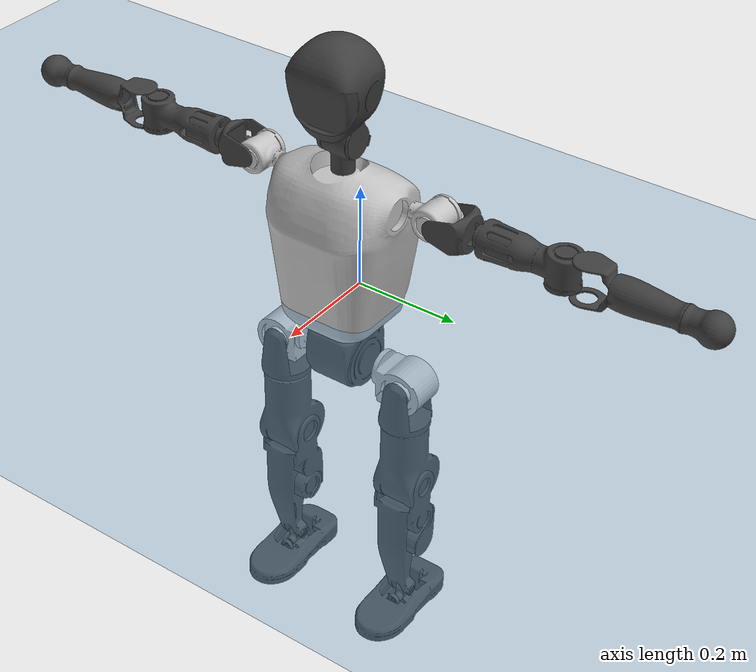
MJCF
<mujoco model="T1">
  <compiler angle="radian" assetdir="assets" balanceinertia="true" inertiafromgeom="false"/>

  <option timestep="0.005" density="1.2" viscosity="2e-05"/>

  <size nkey="1"/>

  <visual>
    <quality shadowsize="8192"/>
    <map shadowclip="0.5"/>
  </visual>

  <default>
    <default class="/">
      <joint armature="0.01" damping="0.01" frictionloss="0.1"/>
      <geom contype="0" conaffinity="0" group="1" solref="-1000 -80"/>
      <site size="0.01 0.005 0.005" group="5"/>
      <general forcelimited="true" biastype="affine" gainprm="25" biasprm="0 -25 -0.6"/>
      <default class="t1">
        <geom rgba="0.25 0.25 0.25 1"/>
        <default class="visual">
          <geom type="mesh" group="2"/>
        </default>
        <default class="collision">
          <geom group="3"/>
        </default>
        <default class="foot">
          <geom size="0.1115 0.05 0.015" type="box" condim="6" group="4" priority="1" solimp="0.015 1 0.015"/>
        </default>
        <default class="reward_collision_sphere">
          <geom group="5" rgba="1 0 0 1"/>
        </default>
      </default>
    </default>
  </default>

  <asset>
    <texture type="skybox" colorspace="auto" name="//unnamed_texture_0" builtin="gradient" rgb1="0.95 0.95 0.95" rgb2="0.95 0.95 0.95" width="100" height="600"/>
    <texture type="2d" colorspace="auto" name="texplane" builtin="checker" rgb1="0.345 0.575 0.748" rgb2="0.345 0.575 0.748" markrgb="1 1 1" width="512" height="512"/>
    <material name="MatPlane" class="/" texture="texplane" texuniform="true" texrepeat="2 2" specular="0.9"/>
    <mesh name="Trunk" class="/" file="Trunk.stl"/>
    <mesh name="H1" class="/" file="H1.stl"/>
    <mesh name="H2" class="/" file="H2.stl"/>
    <mesh name="AL1" class="/" file="AL1.stl"/>
    <mesh name="AL2" class="/" file="AL2.stl"/>
    <mesh name="AL3" class="/" file="AL3.stl"/>
    <mesh name="left_hand_link" class="/" file="left_hand_link.stl"/>
    <mesh name="AR1" class="/" file="AR1.stl"/>
    <mesh name="AR2" class="/" file="AR2.stl"/>
    <mesh name="AR3" class="/" file="AR3.stl"/>
    <mesh name="right_hand_link" class="/" file="right_hand_link.stl"/>
    <mesh name="Waist" class="/" file="Waist.stl"/>
    <mesh name="Hip_Pitch_Left" class="/" file="Hip_Pitch_Left.stl"/>
    <mesh name="Hip_Roll_Left" class="/" file="Hip_Roll_Left.stl"/>
    <mesh name="Hip_Yaw_Left" class="/" file="Hip_Yaw_Left.stl"/>
    <mesh name="Shank_Left" class="/" file="Shank_Left.stl"/>
    <mesh name="Ankle_Cross_Left" class="/" file="Ankle_Cross_Left.stl"/>
    <mesh name="left_foot_link" class="/" file="left_foot_link.stl"/>
    <mesh name="Hip_Pitch_Right" class="/" file="Hip_Pitch_Right.stl"/>
    <mesh name="Hip_Roll_Right" class="/" file="Hip_Roll_Right.stl"/>
    <mesh name="Hip_Yaw_Right" class="/" file="Hip_Yaw_Right.stl"/>
    <mesh name="Shank_Right" class="/" file="Shank_Right.stl"/>
    <mesh name="Ankle_Cross_Right" class="/" file="Ankle_Cross_Right.stl"/>
    <mesh name="right_foot_link" class="/" file="right_foot_link.stl"/>
  </asset>

  <worldbody>
    <geom name="floor" class="/" size="100 100 0.125" type="plane" group="0" material="MatPlane"/>
    <light name="toplight_shadow" class="/" pos="0 0 5" dir="0.0990148 0.0990148 -0.990148" type="directional" ambient="0.04 0.04 0.04" diffuse="0.55 0.55 0.55" specular="0.12 0.12 0.12"/>
    <light name="toplight_fill" class="/" pos="0 0 5" dir="0.0990148 0.0990148 -0.990148" type="directional" castshadow="false" ambient="0.04 0.04 0.04" diffuse="0.3 0.3 0.3" specular="0.08 0.08 0.08"/>
    <body name="trunk" childclass="t1" pos="0.000181197 -0.000865092 -0.000524978" quat="1 -4.92076e-05 -0.000159415 -6.07014e-05">
      <inertial pos="0.0421504 0.00187569 0.112465" quat="0.999881 -0.012361 -0.00813683 -0.0043255" mass="12.2656" diaginertia="0.0192082 0.264131 0.0681828"/>
      <joint name="//unnamed_joint_0" type="free" armature="0" damping="0" frictionloss="0"/>
      <geom name="//unnamed_geom_1" class="visual" rgba="0.76 0.76 0.76 1" mesh="Trunk"/>
      <geom name="//unnamed_geom_2" class="collision" size="0.0766931 0.102257 0.153386" pos="0.0441289 0 0.125496" type="box"/>
      <geom name="//unnamed_geom_3" class="reward_collision_sphere" size="0.117596" pos="0.0441289 0 0.10458"/>
      <geom name="//unnamed_geom_4" class="reward_collision_sphere" size="0.0153386" pos="0.0441289 0.109348 0"/>
      <geom name="//unnamed_geom_5" class="reward_collision_sphere" size="0.0153386" pos="0.0441289 -0.109348 0"/>
      <geom name="//unnamed_geom_6" class="reward_collision_sphere" size="0.0153386" pos="0.0441289 0.13765 0.188243"/>
      <geom name="//unnamed_geom_7" class="reward_collision_sphere" size="0.0153386" pos="0.0441289 -0.13765 0.188243"/>
      <site name="imu" pos="-0.0113611 -0.00874473 -0.00110953" size="0.0102257"/>
      <camera name="track" pos="0 -2.57289 0" quat="0.707107 0.707107 0 0" mode="trackcom"/>
      <camera name="ego_camera" pos="0.0897288 0 0.439235" quat="-0.5 -0.5 0.5 0.5"/>
      <body name="H1" pos="0.0441201 -0.00288702 0.256499" quat="1 6.62195e-06 3.43233e-05 8.23983e-07">
        <inertial pos="-0.00128922 5.26927e-05 0.0609406" quat="0.755474 -0.0172621 0.00101431 0.654951" mass="0.459981" diaginertia="5.08778e-05 0.000766937 0.000187155"/>
        <joint name="AAHead_yaw" pos="0 0 0" axis="0.00027539 -0.00551246 0.999985" range="-1.57615 1.51978" armature="0.0105711" damping="0.0252674" frictionloss="0.0935235"/>
        <geom name="//unnamed_geom_8" class="visual" mesh="H1"/>
        <body name="H2" pos="-0.00116288 -0.000980154 0.0615943" quat="1 1.75658e-05 1.22689e-05 -6.13581e-05">
          <inertial pos="0.00440643 -0.00102975 0.102689" quat="0.988783 0.111053 -0.0740924 -0.0669776" mass="0.671253" diaginertia="0.000438414 0.00676121 0.00222943"/>
          <joint name="Head_pitch" pos="0 0 0" axis="-0.00325531 -0.999995 0.000273171" stiffness="0.00140617" range="-1.21702 0.35358" armature="0.0100627" damping="0.0100702" frictionloss="0.0889384"/>
          <geom name="//unnamed_geom_9" class="visual" mesh="H2"/>
          <geom name="//unnamed_geom_10" class="collision" size="0.081806" pos="0.00735482 0 0.115038"/>
          <geom name="//unnamed_geom_11" class="reward_collision_sphere" size="0.0920317" pos="0.0147096 0 0.10458"/>
        </body>
      </body>
      <body name="AL1" pos="0.0406637 0.136622 0.227384" quat="0.999998 0.000182225 0.0017268 -0.000406789">
        <inertial pos="-0.00055684 0.0559724 -0.00163082" quat="0.499021 0.505857 -0.503604 0.491397" mass="0.567178" diaginertia="0.000297089 0.00470315 0.000363297"/>
        <joint name="Left_Shoulder_Pitch" pos="0 0 0" axis="-2.55706e-05 1 -0.000493217" stiffness="0.0031865" range="-3.31893 1.27606" armature="0.0101223" damping="0.00355833" frictionloss="0.101765"/>
        <geom name="//unnamed_geom_12" class="visual" rgba="0.76 0.76 0.76 1" mesh="AL1"/>
        <body name="AL2" pos="0.000202194 0.0637127 -0.00259142" quat="0.999999 -0.00112074 -0.000484731 0.000102002">
          <inertial pos="0.00538026 0.0508717 0.00205144" quat="0.487899 0.51525 -0.492192 0.504201" mass="0.1731" diaginertia="8.5941e-05 0.00120815 0.000226152"/>
          <joint name="Left_Shoulder_Roll" pos="0 0 0" axis="-1 -8.50395e-05 -0.0007936" range="-1.56979 1.73993" armature="0.0100338" damping="0.0062834" frictionloss="0.105883"/>
          <geom name="//unnamed_geom_13" class="visual" mesh="AL2"/>
          <body name="AL3" pos="0.000901248 0.0798647 0.00277155" quat="1 -9.0093e-05 6.00606e-06 5.20424e-05">
            <inertial pos="-0.0025241 0.10931 -0.00258907" quat="0.704322 0.709765 -0.00488143 -0.0118633" mass="1.1684" diaginertia="0.00286809 0.0461688 0.000804257"/>
            <joint name="Left_Elbow_Pitch" pos="0 0 0" axis="0.00101156 -0.999967 0.00807896" stiffness="0.00139589" range="-2.29238 2.31859" armature="0.0108438" damping="0.0234936" frictionloss="0.100123"/>
            <geom name="//unnamed_geom_14" class="visual" mesh="AL3"/>
            <geom name="//unnamed_geom_15" class="collision" size="0.0306772 0.0766931" pos="0 0.0643223 0" quat="0.707105 0.707108 0 0" type="cylinder"/>
            <geom name="//unnamed_geom_16" class="reward_collision_sphere" size="0.0368127"/>
            <body name="left_hand_link" pos="0.00185424 0.192053 -0.00187778" quat="1 7.13969e-06 -0.000502908 -2.15162e-05">
              <inertial pos="-0.000631253 0.142155 -0.000184694" quat="0.70805 0.706162 0.00015061 -4.56442e-05" mass="0.344833" diaginertia="0.00169096 0.028522 0.000271964"/>
              <joint name="Left_Elbow_Yaw" pos="0 0 0" axis="-0.00154316 -0.000844296 0.999998" stiffness="0.00834807" range="-2.49367 0.00652571" armature="0.0104031" damping="0.00286573" frictionloss="0.116596"/>
              <geom name="//unnamed_geom_17" class="visual" mesh="left_hand_link"/>
              <geom name="//unnamed_geom_18" class="collision" size="0.0306772 0.0894753" pos="0 0.167238 0" quat="0.707105 0.707108 0 0" type="cylinder"/>
              <geom name="//unnamed_geom_19" class="reward_collision_sphere" size="0.0511287"/>
              <geom name="//unnamed_geom_20" class="reward_collision_sphere" size="0.0357901" pos="0 0.141509 0"/>
              <geom name="//unnamed_geom_21" class="reward_collision_sphere" size="0.0357901" pos="0 0.276586 0"/>
            </body>
          </body>
        </body>
      </body>
      <body name="AR1" pos="0.042571 -0.136038 0.227692" quat="0.999999 0.000783771 0.00118997 -0.000365968">
        <inertial pos="-0.00324307 -0.0580421 -0.00256835" quat="0.49831 0.501639 -0.49789 0.502148" mass="0.594721" diaginertia="0.000297632 0.00472515 0.000384074"/>
        <joint name="Right_Shoulder_Pitch" pos="0 0 0" axis="0.00273582 -0.999991 -0.00311272" stiffness="0.00208549" range="-1.22447 3.29728" armature="0.00980135" damping="0" frictionloss="0.0906754"/>
        <geom name="//unnamed_geom_22" class="visual" rgba="0.76 0.76 0.76 1" mesh="AR1"/>
        <body name="AR2" pos="-0.00140781 -0.0603924 0.00160563" quat="1 -0.000135502 0.000231068 5.99478e-05">
          <inertial pos="0.000458068 -0.0506736 -0.0006513" quat="0.518584 0.482921 -0.50462 0.49317" mass="0.170853" diaginertia="8.96543e-05 0.0012116 0.000230043"/>
          <joint name="Right_Shoulder_Roll" pos="0 0 0" axis="-0.999998 -0.0019837 0.000885629" stiffness="0.00260879" range="-1.74756 1.5617" armature="0.0100555" damping="0" frictionloss="0.101246"/>
          <geom name="//unnamed_geom_23" class="visual" mesh="AR2"/>
          <body name="AR3" pos="0.000379438 -0.0761106 -0.00143652" quat="0.999999 -1.64889e-05 -0.00130405 -0.000259302">
            <inertial pos="-5.97121e-06 -0.108879 0.000482133" quat="0.715666 0.698412 -0.00587607 -0.00265776" mass="1.12128" diaginertia="0.00284675 0.0451953 0.000793302"/>
            <joint name="Right_Elbow_Pitch" pos="0 0 0" axis="-0.00337348 0.999993 0.00170156" stiffness="0.00119733" range="-2.24918 2.27308" armature="0.0103599" damping="0.00918942" frictionloss="0.0980459"/>
            <geom name="//unnamed_geom_24" class="visual" mesh="AR3"/>
            <geom name="//unnamed_geom_25" class="collision" size="0.0306772 0.0766931" pos="0 -0.0643223 0" quat="0.707105 0.707108 0 0" type="cylinder"/>
            <geom name="//unnamed_geom_26" class="reward_collision_sphere" size="0.0368127"/>
            <body name="right_hand_link" pos="-0.00177939 -0.186706 0.00177686" quat="0.999999 -0.000928199 -0.000148842 0.000973359">
              <inertial pos="2.78555e-06 -0.138222 0.00166891" quat="0.706382 0.707823 0.0026233 -0.00202218" mass="0.359347" diaginertia="0.00178844 0.0292122 0.000270339"/>
              <joint name="Right_Elbow_Yaw" pos="0 0 0" axis="0.00112082 0.0020893 0.999997" range="0.0481359 2.42888" armature="0.010677" damping="0.00691743" frictionloss="0.114528"/>
              <geom name="//unnamed_geom_27" class="visual" mesh="right_hand_link"/>
              <geom name="//unnamed_geom_28" class="collision" size="0.0306772 0.0894753" pos="0 -0.167238 0" quat="0.707105 0.707108 0 0" type="cylinder"/>
              <geom name="//unnamed_geom_29" class="reward_collision_sphere" size="0.0511287"/>
              <geom name="//unnamed_geom_30" class="reward_collision_sphere" size="0.0357901" pos="0 -0.141509 0"/>
              <geom name="//unnamed_geom_31" class="reward_collision_sphere" size="0.0357901" pos="0 -0.276586 0"/>
            </body>
          </body>
        </body>
      </body>
      <body name="Waist" pos="0.0421734 -0.000232679 -0.121862" quat="1 -0.000400715 -0.000356039 0.000295744">
        <inertial pos="-6.46529e-05 -0.00103062 0.00678597" quat="0.98408 0.00134933 -0.177713 -0.00171855" mass="2.58685" diaginertia="0.00109378 0.018191 0.0058152"/>
        <joint name="Waist" pos="0 0 0" axis="-0.0013198 0.00373193 0.999992" range="-1.61417 1.57875" armature="0.0114956" damping="0.0209221" frictionloss="0.101672"/>
        <geom name="//unnamed_geom_32" class="visual" mesh="Waist"/>
        <body name="Hip_Pitch_Left" pos="-0.000443593 0.137493 -0.00144891" quat="1 1.65329e-05 2.92358e-05 -6.91842e-05">
          <inertial pos="0.000751516 -0.00679587 -0.0164041" quat="0.976236 0.21551 0.0223633 -0.00428691" mass="1.13128" diaginertia="0.00038947 0.00534655 0.00158172"/>
          <joint name="Left_Hip_Pitch" pos="0 0 0" axis="-0.00223209 0.999996 -0.00148238" stiffness="0.00557287" range="-1.7967 1.62032" armature="0.011386" damping="0.0209529" frictionloss="0.106199"/>
          <geom name="//unnamed_geom_33" class="visual" rgba="0.76 0.76 0.76 1" mesh="Hip_Pitch_Left"/>
          <body name="Hip_Roll_Left" pos="0.00211859 -0.00265128 -0.0230516" quat="1 -0.000128416 -0.000193986 0.000223405">
            <inertial pos="-0.0010759 0.000449327 -0.0543717" quat="0.70871 -0.00319821 -0.016381 0.705302" mass="0.403775" diaginertia="0.000365381 0.00553476 0.000649123"/>
            <joint name="Left_Hip_Roll" pos="0 0 0" axis="-0.999928 0.01203 0.000353818" stiffness="0.0103339" range="-1.56965 0.188733" armature="0.0114533" damping="0.00899786" frictionloss="0.0906704"/>
            <geom name="//unnamed_geom_34" class="visual" mesh="Hip_Roll_Left"/>
            <geom name="//unnamed_geom_35" class="reward_collision_sphere" size="0.0562416"/>
            <body name="Hip_Yaw_Left" pos="-0.00276562 -0.000725673 -0.0841027" quat="1 0.000152733 -0.000395563 -0.000268607">
              <inertial pos="-0.00788425 6.56391e-05 -0.0926379" quat="0.695162 -0.0374536 -0.0349559 0.717025" mass="2.30336" diaginertia="0.00556683 0.0861135 0.00325674"/>
              <joint name="Left_Hip_Yaw" pos="0 0 0" axis="-0.00633189 0.00256807 -0.999977" stiffness="0.00107753" range="-1.05502 1.0577" armature="0.0104561" damping="0" frictionloss="0.101021"/>
              <geom name="//unnamed_geom_36" class="visual" mesh="Hip_Yaw_Left"/>
              <geom name="//unnamed_geom_37" class="collision" size="0.0511287 0.081806" type="cylinder"/>
              <body name="Shank_Left" pos="-0.00816569 -0.000556935 -0.139849" quat="1 0.000232275 0.000399296 8.43858e-05">
                <inertial pos="-0.00376765 0.00316683 -0.127431" quat="0.997549 0.00192488 -0.0241884 0.0656269" mass="1.80904" diaginertia="0.00745166 0.123316 0.00231533"/>
                <joint name="Left_Knee_Pitch" pos="0 0 0" axis="-0.00138402 0.999998 0.00152637" stiffness="0.00377774" range="0.034583 2.30709" armature="0.010352" damping="0.0156655" frictionloss="0.104994"/>
                <geom name="//unnamed_geom_38" class="visual" mesh="Shank_Left"/>
                <geom name="//unnamed_geom_39" class="collision" size="0.0511287 0.0766931" pos="0 0 -0.125496" type="cylinder"/>
                <geom name="//unnamed_geom_40" class="reward_collision_sphere" size="0.0664674"/>
                <body name="Ankle_Cross_Left" pos="0.000123673 -0.00118286 -0.290179" quat="1 -0.00042155 -0.000177614 0.000150997">
                  <inertial pos="-0.00405521 0.00290653 -0.00618467" quat="0.443869 0.554826 0.55642 0.43075" mass="0.0818397" diaginertia="6.53994e-06 8.86209e-05 1.44016e-05"/>
                  <joint name="Left_Ankle_Pitch" pos="0 0 0" axis="-0.0016709 0.999999 -0.000367469" range="-0.81948 0.332511" armature="0.00930418" damping="0.00718599" frictionloss="0.10337"/>
                  <geom name="//unnamed_geom_41" class="visual" mesh="Ankle_Cross_Left"/>
                  <body name="left_foot_link" pos="-0.000590271 -0.00260809 -0.0104718" quat="1 -0.000313779 -0.000662626 -0.000219725">
                    <inertial pos="-0.00306449 0.000250617 -0.0123013" quat="0.000515008 0.620529 -0.00118563 0.784183" mass="0.702266" diaginertia="0.000542642 0.00835167 0.00270226"/>
                    <joint name="Left_Ankle_Roll" pos="0 0 0" axis="-0.999995 0.00070197 0.00321264" stiffness="0.000171254" range="-0.445257 0.440111" armature="0.0101278" damping="0.00884878" frictionloss="0.102561"/>
                    <geom name="//unnamed_geom_42" class="visual" mesh="left_foot_link"/>
                    <geom name="left_foot" class="foot" size="0.107663 0.0475263 0.0146661" pos="0.00735482 0 -0.015687"/>
                    <geom name="//unnamed_geom_44" class="reward_collision_sphere" size="0.0531739" pos="0.00735482 0 -0.015687"/>
                    <geom name="//unnamed_geom_45" class="reward_collision_sphere" size="0.0306772" pos="0.0698708 -0.0295883 -0.015687"/>
                    <geom name="//unnamed_geom_46" class="reward_collision_sphere" size="0.0306772" pos="-0.0514837 -0.0295883 -0.015687"/>
                    <site name="left_foot" class="foot" pos="0.00735482 0 -0.015687" size="0.0102257"/>
                  </body>
                </body>
              </body>
            </body>
          </body>
        </body>
        <body name="Hip_Pitch_Right" pos="-0.000177668 -0.136239 0.00137018" quat="0.999999 0.00108381 -0.000217016 -0.00025867">
          <inertial pos="-0.00254673 0.00932902 -0.0159852" quat="0.973511 -0.228143 0.0144146 -0.00429911" mass="1.12974" diaginertia="0.000401261 0.00533781 0.00158064"/>
          <joint name="Right_Hip_Pitch" pos="0 0 0" axis="0.00269585 -0.999995 0.00136329" range="-1.5735 1.75834" armature="0.0088805" damping="0.00950828" frictionloss="0.101538"/>
          <geom name="//unnamed_geom_47" class="visual" rgba="0.76 0.76 0.76 1" mesh="Hip_Pitch_Right"/>
          <body name="Hip_Roll_Right" pos="0.00166582 0.000180344 -0.0234824" quat="0.999999 -0.000299992 0.000447091 -0.00103254">
            <inertial pos="0.00119199 0.000595566 -0.0534721" quat="0.701621 -0.0116642 -0.000523458 0.712455" mass="0.403745" diaginertia="0.000376025 0.00548091 0.00063903"/>
            <joint name="Right_Hip_Roll" pos="0 0 0" axis="-1 0.000423146 -0.000605099" range="-0.165217 1.57717" armature="0.0101362" damping="0.0128157" frictionloss="0.112795"/>
            <geom name="//unnamed_geom_48" class="visual" mesh="Hip_Roll_Right"/>
            <geom name="//unnamed_geom_49" class="reward_collision_sphere" size="0.0562416"/>
            <body name="Hip_Yaw_Right" pos="-0.00112088 -1.17628e-05 -0.0863254" quat="1 -3.90837e-05 -0.000656989 -0.000161551">
              <inertial pos="-0.00435386 -0.00238946 -0.0957474" quat="0.71499 -0.0310303 -0.0362126 0.697507" mass="2.29753" diaginertia="0.0055219 0.0917548 0.00314404"/>
              <joint name="Right_Hip_Yaw" pos="0 0 0" axis="0.00395901 0.00900318 -0.999952" range="-1.02245 0.99838" armature="0.0116225" damping="0.003486" frictionloss="0.101432"/>
              <geom name="//unnamed_geom_50" class="visual" mesh="Hip_Yaw_Right"/>
              <geom name="//unnamed_geom_51" class="collision" size="0.0511287 0.081806" type="cylinder"/>
              <body name="Shank_Right" pos="-0.0118119 0.000349414 -0.13818" quat="0.999999 -0.00077327 0.000484707 0.000726984">
                <inertial pos="-0.00393635 -0.000174811 -0.13115" quat="0.999413 0.00183781 -0.0209001 -0.0270685" mass="1.95058" diaginertia="0.00775211 0.122457 0.00251981"/>
                <joint name="Right_Knee_Pitch" pos="0 0 0" axis="-0.00504617 -0.999943 -0.00935836" stiffness="0.00732608" range="-2.28997 0.0120641" armature="0.0113076" damping="0.0183325" frictionloss="0.102823"/>
                <geom name="//unnamed_geom_52" class="visual" mesh="Shank_Right"/>
                <geom name="//unnamed_geom_53" class="collision" size="0.0511287 0.0766931" pos="0 0 -0.125496" type="cylinder"/>
                <geom name="//unnamed_geom_54" class="reward_collision_sphere" size="0.0664674"/>
                <body name="Ankle_Cross_Right" pos="-0.00181155 -0.000564469 -0.292861" quat="1 3.90471e-05 -6.13865e-05 0.000141855">
                  <inertial pos="-0.00327473 -0.0022714 -0.00829378" quat="0.441092 0.548727 0.55368 0.444718" mass="0.0805811" diaginertia="6.46931e-06 9.39923e-05 1.47618e-05"/>
                  <joint name="Right_Ankle_Pitch" pos="0 0 0" axis="-0.00643758 -0.999956 -0.00676237" range="-0.405467 0.814914" armature="0.010151" damping="0.00522694" frictionloss="0.105316"/>
                  <geom name="//unnamed_geom_55" class="visual" mesh="Ankle_Cross_Right"/>
                  <body name="right_foot_link" pos="0.00241082 -0.00101104 -0.0147817" quat="1 -5.37692e-05 -6.13888e-05 8.88236e-05">
                    <inertial pos="-0.00221947 0.000325247 -0.0098955" quat="-7.84137e-06 0.620806 0.000368652 0.783964" mass="0.730036" diaginertia="0.000581296 0.008113 0.00271252"/>
                    <joint name="Right_Ankle_Roll" pos="0 0 0" axis="-0.999935 0.0089653 0.00703815" range="-0.485264 0.437528" armature="0.00961826" damping="0" frictionloss="0.0968418"/>
                    <geom name="//unnamed_geom_56" class="visual" mesh="right_foot_link"/>
                    <geom name="right_foot" class="foot" size="0.108431 0.0447352 0.0146292" pos="0.00735482 0 -0.015687"/>
                    <geom name="//unnamed_geom_58" class="reward_collision_sphere" size="0.040903"/>
                    <geom name="//unnamed_geom_59" class="reward_collision_sphere" size="0.0306772" pos="0.00735482 0 -0.015687"/>
                    <geom name="//unnamed_geom_60" class="reward_collision_sphere" size="0.0306772" pos="0.0698708 0.0295883 -0.015687"/>
                    <geom name="//unnamed_geom_61" class="reward_collision_sphere" size="0.0306772" pos="-0.0514837 0.0295883 -0.015687"/>
                    <site name="right_foot" class="foot" pos="0.00735482 0 -0.015687" size="0.0102257"/>
                  </body>
                </body>
              </body>
            </body>
          </body>
        </body>
      </body>
    </body>
  </worldbody>

  <contact>
    <pair class="/" geom1="floor" geom2="left_foot" name="//unnamed_contact_0"/>
    <pair class="/" geom1="floor" geom2="right_foot" name="//unnamed_contact_1"/>
  </contact>

  <actuator>
    <general name="AAHead_yaw" class="/" joint="AAHead_yaw" forcerange="-7.17176 7.17176" gainprm="23.6386" biasprm="0 -23.6386 -0.610448"/>
    <general name="Head_pitch" class="/" joint="Head_pitch" forcerange="-7.20791 7.20791" gainprm="23.6386" biasprm="0 -23.6386 -0.610448"/>
    <general name="Left_Shoulder_Pitch" class="/" joint="Left_Shoulder_Pitch" forcerange="-16.6282 16.6282" gainprm="23.6386" biasprm="0 -23.6386 -0.610448"/>
    <general name="Left_Shoulder_Roll" class="/" joint="Left_Shoulder_Roll" forcerange="-18.0161 18.0161" gainprm="23.6386" biasprm="0 -23.6386 -0.610448"/>
    <general name="Left_Elbow_Pitch" class="/" joint="Left_Elbow_Pitch" forcerange="-18.1759 18.1759" gainprm="23.6386" biasprm="0 -23.6386 -0.610448"/>
    <general name="Left_Elbow_Yaw" class="/" joint="Left_Elbow_Yaw" forcerange="-18.2728 18.2728" gainprm="23.6386" biasprm="0 -23.6386 -0.610448"/>
    <general name="Right_Shoulder_Pitch" class="/" joint="Right_Shoulder_Pitch" forcerange="-18.9787 18.9787" gainprm="23.6386" biasprm="0 -23.6386 -0.610448"/>
    <general name="Right_Shoulder_Roll" class="/" joint="Right_Shoulder_Roll" forcerange="-16.8987 16.8987" gainprm="23.6386" biasprm="0 -23.6386 -0.610448"/>
    <general name="Right_Elbow_Pitch" class="/" joint="Right_Elbow_Pitch" forcerange="-20.1075 20.1075" gainprm="23.6386" biasprm="0 -23.6386 -0.610448"/>
    <general name="Right_Elbow_Yaw" class="/" joint="Right_Elbow_Yaw" forcerange="-18.7259 18.7259" gainprm="23.6386" biasprm="0 -23.6386 -0.610448"/>
    <general name="Waist" class="/" joint="Waist" forcerange="-32.1116 32.1116" gainprm="23.6386" biasprm="0 -23.6386 -0.610448"/>
    <general name="Left_Hip_Pitch" class="/" joint="Left_Hip_Pitch" forcerange="-46.3504 46.3504" gainprm="23.6386" biasprm="0 -23.6386 -0.610448"/>
    <general name="Left_Hip_Roll" class="/" joint="Left_Hip_Roll" forcerange="-33.9 33.9" gainprm="23.6386" biasprm="0 -23.6386 -0.610448"/>
    <general name="Left_Hip_Yaw" class="/" joint="Left_Hip_Yaw" forcerange="-27.4783 27.4783" gainprm="23.6386" biasprm="0 -23.6386 -0.610448"/>
    <general name="Left_Knee_Pitch" class="/" joint="Left_Knee_Pitch" forcerange="-58.455 58.455" gainprm="23.6386" biasprm="0 -23.6386 -0.610448"/>
    <general name="Left_Ankle_Pitch" class="/" joint="Left_Ankle_Pitch" forcerange="-20.0289 20.0289" gainprm="23.6386" biasprm="0 -23.6386 -0.610448"/>
    <general name="Left_Ankle_Roll" class="/" joint="Left_Ankle_Roll" forcerange="-16.9033 16.9033" gainprm="23.6386" biasprm="0 -23.6386 -0.610448"/>
    <general name="Right_Hip_Pitch" class="/" joint="Right_Hip_Pitch" forcerange="-46.1058 46.1058" gainprm="23.6386" biasprm="0 -23.6386 -0.610448"/>
    <general name="Right_Hip_Roll" class="/" joint="Right_Hip_Roll" forcerange="-31.247 31.247" gainprm="23.6386" biasprm="0 -23.6386 -0.610448"/>
    <general name="Right_Hip_Yaw" class="/" joint="Right_Hip_Yaw" forcerange="-33.3583 33.3583" gainprm="23.6386" biasprm="0 -23.6386 -0.610448"/>
    <general name="Right_Knee_Pitch" class="/" joint="Right_Knee_Pitch" forcerange="-61.5607 61.5607" gainprm="23.6386" biasprm="0 -23.6386 -0.610448"/>
    <general name="Right_Ankle_Pitch" class="/" joint="Right_Ankle_Pitch" forcerange="-21.097 21.097" gainprm="23.6386" biasprm="0 -23.6386 -0.610448"/>
    <general name="Right_Ankle_Roll" class="/" joint="Right_Ankle_Roll" forcerange="-13.9754 13.9754" gainprm="23.6386" biasprm="0 -23.6386 -0.610448"/>
  </actuator>

  <sensor>
    <gyro site="imu" name="imu_angular_velocity"/>
    <velocimeter site="imu" name="imu_linear_velocity"/>
    <framelinvel objtype="site" objname="left_foot" name="left_foot_global_linear_velocity"/>
    <framelinvel objtype="site" objname="right_foot" name="right_foot_global_linear_velocity"/>
  </sensor>

  <keyframe>
    <key name="home" qpos="0 0 0.6385 1 0 0 0 0 0 0 1.4 0 -0.4 0 -1.4 0 0.4 0 -0.4 0 0 0.8 -0.4 0 0.4 0 0 -0.8 0.4 0"/>
  </keyframe>
</mujoco>
